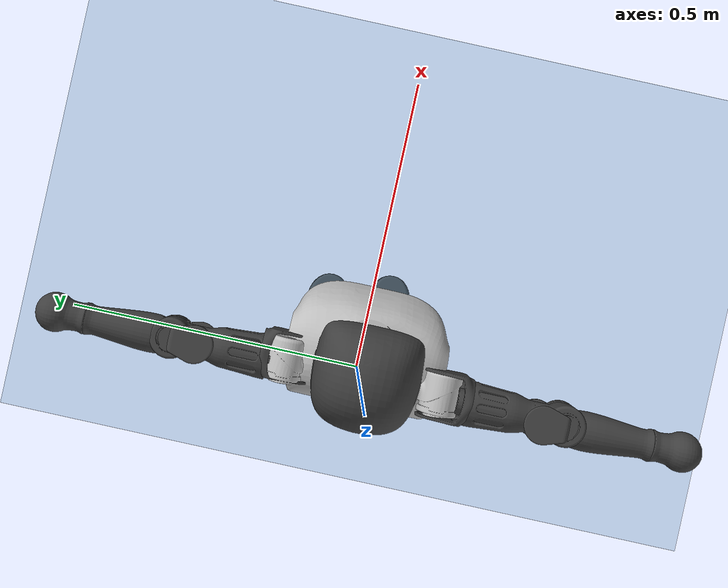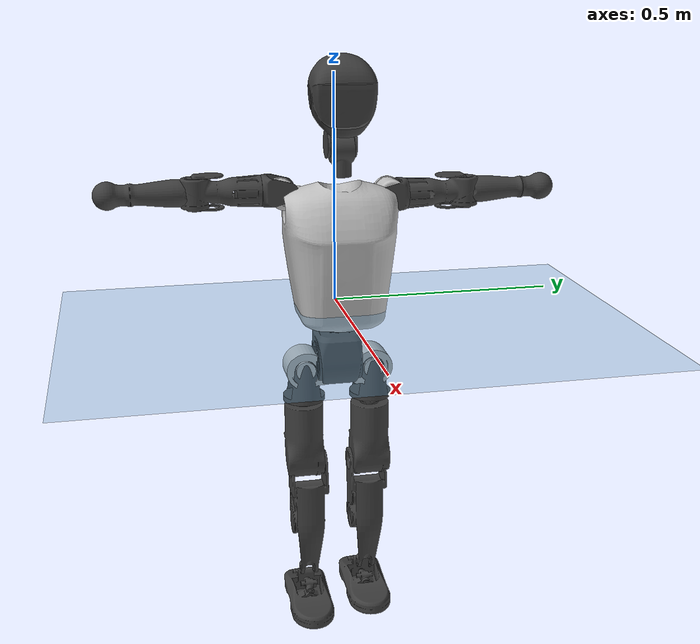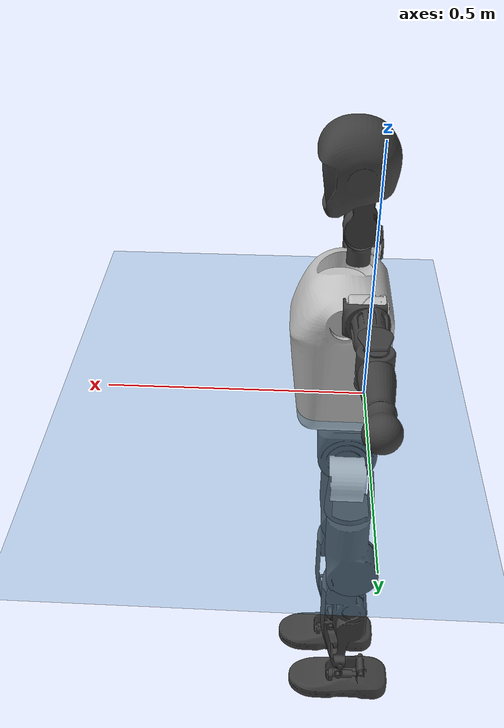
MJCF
<mujoco model="T1">
  <compiler angle="radian" assetdir="assets" balanceinertia="true" inertiafromgeom="false"/>

  <option timestep="0.005" density="1.2" viscosity="2e-05"/>

  <size nkey="1"/>

  <visual>
    <quality shadowsize="8192"/>
    <map shadowclip="0.5"/>
  </visual>

  <default>
    <default class="/">
      <joint armature="0.01" damping="0.01" frictionloss="0.1"/>
      <geom contype="0" conaffinity="0" group="1" solref="-1000 -80"/>
      <site size="0.01 0.005 0.005" group="5"/>
      <general forcelimited="true" biastype="affine" gainprm="25" biasprm="0 -25 -0.6"/>
      <default class="t1">
        <geom rgba="0.25 0.25 0.25 1"/>
        <default class="visual">
          <geom type="mesh" group="2"/>
        </default>
        <default class="collision">
          <geom group="3"/>
        </default>
        <default class="foot">
          <geom size="0.1115 0.05 0.015" type="box" condim="6" group="4" priority="1" solimp="0.015 1 0.015"/>
        </default>
        <default class="reward_collision_sphere">
          <geom group="5" rgba="1 0 0 1"/>
        </default>
      </default>
    </default>
  </default>

  <asset>
    <texture type="skybox" colorspace="auto" name="//unnamed_texture_0" builtin="gradient" rgb1="0.95 0.95 0.95" rgb2="0.95 0.95 0.95" width="100" height="600"/>
    <texture type="2d" colorspace="auto" name="texplane" builtin="checker" rgb1="0.345 0.575 0.748" rgb2="0.345 0.575 0.748" markrgb="1 1 1" width="512" height="512"/>
    <material name="MatPlane" class="/" texture="texplane" texuniform="true" texrepeat="2 2" specular="0.9"/>
    <mesh name="Trunk" class="/" file="Trunk.stl"/>
    <mesh name="H1" class="/" file="H1.stl"/>
    <mesh name="H2" class="/" file="H2.stl"/>
    <mesh name="AL1" class="/" file="AL1.stl"/>
    <mesh name="AL2" class="/" file="AL2.stl"/>
    <mesh name="AL3" class="/" file="AL3.stl"/>
    <mesh name="left_hand_link" class="/" file="left_hand_link.stl"/>
    <mesh name="AR1" class="/" file="AR1.stl"/>
    <mesh name="AR2" class="/" file="AR2.stl"/>
    <mesh name="AR3" class="/" file="AR3.stl"/>
    <mesh name="right_hand_link" class="/" file="right_hand_link.stl"/>
    <mesh name="Waist" class="/" file="Waist.stl"/>
    <mesh name="Hip_Pitch_Left" class="/" file="Hip_Pitch_Left.stl"/>
    <mesh name="Hip_Roll_Left" class="/" file="Hip_Roll_Left.stl"/>
    <mesh name="Hip_Yaw_Left" class="/" file="Hip_Yaw_Left.stl"/>
    <mesh name="Shank_Left" class="/" file="Shank_Left.stl"/>
    <mesh name="Ankle_Cross_Left" class="/" file="Ankle_Cross_Left.stl"/>
    <mesh name="left_foot_link" class="/" file="left_foot_link.stl"/>
    <mesh name="Hip_Pitch_Right" class="/" file="Hip_Pitch_Right.stl"/>
    <mesh name="Hip_Roll_Right" class="/" file="Hip_Roll_Right.stl"/>
    <mesh name="Hip_Yaw_Right" class="/" file="Hip_Yaw_Right.stl"/>
    <mesh name="Shank_Right" class="/" file="Shank_Right.stl"/>
    <mesh name="Ankle_Cross_Right" class="/" file="Ankle_Cross_Right.stl"/>
    <mesh name="right_foot_link" class="/" file="right_foot_link.stl"/>
  </asset>

  <worldbody>
    <geom name="floor" class="/" size="100 100 0.125" type="plane" group="0" material="MatPlane"/>
    <light name="toplight_shadow" class="/" pos="0 0 5" dir="0.0990148 0.0990148 -0.990148" type="directional" ambient="0.04 0.04 0.04" diffuse="0.55 0.55 0.55" specular="0.12 0.12 0.12"/>
    <light name="toplight_fill" class="/" pos="0 0 5" dir="0.0990148 0.0990148 -0.990148" type="directional" castshadow="false" ambient="0.04 0.04 0.04" diffuse="0.3 0.3 0.3" specular="0.08 0.08 0.08"/>
    <body name="trunk" childclass="t1" pos="-0.00428719 0.000475195 -0.00164403" quat="1 -3.93686e-05 0.00054736 0.000128301">
      <inertial pos="0.0227501 -0.00144365 0.121844" quat="0.999981 0.000374297 -0.00609357 0.000606221" mass="4.7945" diaginertia="0.00112991 0.017609 0.100213"/>
      <joint name="//unnamed_joint_0" type="free" armature="0" damping="0" frictionloss="0"/>
      <geom name="//unnamed_geom_1" class="visual" rgba="0.76 0.76 0.76 1" mesh="Trunk"/>
      <geom name="//unnamed_geom_2" class="collision" size="0.0575933 0.0767911 0.115187" pos="0.025387 0 0.136079" type="box"/>
      <geom name="//unnamed_geom_3" class="reward_collision_sphere" size="0.0883097" pos="0.025387 0 0.113399"/>
      <geom name="//unnamed_geom_4" class="reward_collision_sphere" size="0.0115187" pos="0.025387 0.0634633 0"/>
      <geom name="//unnamed_geom_5" class="reward_collision_sphere" size="0.0115187" pos="0.025387 -0.0634633 0"/>
      <geom name="//unnamed_geom_6" class="reward_collision_sphere" size="0.0115187" pos="0.025387 0.0798892 0.204118"/>
      <geom name="//unnamed_geom_7" class="reward_collision_sphere" size="0.0115187" pos="0.025387 -0.0798892 0.204118"/>
      <site name="imu" pos="0.0420144 0.00846458 -0.0257885" size="0.00767911"/>
      <camera name="track" pos="0 -1.49326 0" quat="0.707107 0.707107 0 0" mode="trackcom"/>
      <camera name="ego_camera" pos="0.0516202 0 0.476275" quat="-0.5 -0.5 0.5 0.5"/>
      <body name="H1" pos="0.0362421 0.00877218 0.28533" quat="1 -2.65172e-06 4.44043e-06 -7.88924e-06">
        <inertial pos="0.00314614 -0.00345264 0.0673985" quat="0.760676 -0.0532348 -0.0134552 0.646805" mass="0.181813" diaginertia="3.28446e-06 5.65968e-05 0.000270052"/>
        <joint name="AAHead_yaw" pos="0 0 0" axis="0.0065608 -0.039596 0.999194" range="-1.60578 1.5598" armature="0.00519009" damping="0.00150019" frictionloss="0.0651383"/>
        <geom name="//unnamed_geom_8" class="visual" mesh="H1"/>
        <body name="H2" pos="-0.00120479 -0.00194313 0.069758" quat="0.999995 -0.00176333 0.00116645 -0.00221355">
          <inertial pos="0.00230074 0.0101713 0.110416" quat="0.988303 0.105753 -0.0784982 -0.0768835" mass="0.263868" diaginertia="2.80748e-05 0.000455254 0.00312555"/>
          <joint name="Head_pitch" pos="0 0 0" axis="-4.92392e-05 -0.999997 0.00257601" stiffness="0.0140406" range="-1.22077 0.33659" armature="0.0061354" damping="0.00138096" frictionloss="0.0756376"/>
          <geom name="//unnamed_geom_9" class="visual" mesh="H2"/>
          <geom name="//unnamed_geom_10" class="collision" size="0.0614328" pos="0.00423116 0 0.124739"/>
          <geom name="//unnamed_geom_11" class="reward_collision_sphere" size="0.0691119" pos="0.00846232 0 0.113399"/>
        </body>
      </body>
      <body name="AL1" pos="0.0231399 0.0716324 0.244696" quat="1 0.000197019 0.000645541 0.000265442">
        <inertial pos="0.00866509 0.0250568 0.0056583" quat="0.504276 0.494471 -0.50533 0.495828" mass="0.223849" diaginertia="1.70406e-05 0.000277102 0.00051651"/>
        <joint name="Left_Shoulder_Pitch" pos="0 0 0" axis="0.0140158 0.999746 0.017654" range="-3.34613 1.21655" armature="0.00633026" damping="0" frictionloss="0.0945559"/>
        <geom name="//unnamed_geom_12" class="visual" rgba="0.76 0.76 0.76 1" mesh="AL1"/>
        <body name="AL2" pos="0.00327199 0.0282494 -0.00435393" quat="1 0.000510848 -0.00033971 3.37551e-05">
          <inertial pos="0.00223417 0.0278484 -0.00284924" quat="0.487896 0.510962 -0.488995 0.511624" mass="0.0698047" diaginertia="4.5306e-06 6.35126e-05 0.000311787"/>
          <joint name="Left_Shoulder_Roll" pos="0 0 0" axis="-0.999969 0.00671021 0.00414334" range="-1.65998 1.88525" armature="0.00741143" damping="0" frictionloss="0.0699419"/>
          <geom name="//unnamed_geom_13" class="visual" mesh="AL2"/>
          <body name="AL3" pos="-0.00837197 0.0439977 -0.00092736" quat="0.999998 0.00161506 -0.000394435 0.000947441">
            <inertial pos="-0.000445628 0.0642884 -0.00623466" quat="0.708001 0.705576 -0.00784013 -0.0289099" mass="0.454456" diaginertia="0.00016077 0.00295762 0.00116859"/>
            <joint name="Left_Elbow_Pitch" pos="0 0 0" axis="-0.00905875 -0.999952 -0.00372653" stiffness="0.00191433" range="-2.31066 2.1387" armature="0.0103271" damping="0.0140813" frictionloss="0.0699857"/>
            <geom name="//unnamed_geom_14" class="visual" mesh="AL3"/>
            <geom name="//unnamed_geom_15" class="collision" size="0.0230373 0.0575933" pos="0 0.0373314 0" quat="0.707105 0.707108 0 0" type="cylinder"/>
            <geom name="//unnamed_geom_16" class="reward_collision_sphere" size="0.0276448"/>
            <body name="left_hand_link" pos="-0.000891218 0.109502 0.00169136" quat="0.999996 0.00119196 0.00246739 0.000316345">
              <inertial pos="-0.0101643 0.0884372 -0.000874968" quat="0.70624 0.70796 -0.00172092 0.00384673" mass="0.152793" diaginertia="0.000105437 0.00183624 0.000432399"/>
              <joint name="Left_Elbow_Yaw" pos="0 0 0" axis="-0.0177841 -0.0125154 0.999764" range="-2.49669 0.0734889" armature="0.00533616" damping="0" frictionloss="0.0542049"/>
              <geom name="//unnamed_geom_17" class="visual" mesh="left_hand_link"/>
              <geom name="//unnamed_geom_18" class="collision" size="0.0230373 0.0671922" pos="0 0.0970616 0" quat="0.707105 0.707108 0 0" type="cylinder"/>
              <geom name="//unnamed_geom_19" class="reward_collision_sphere" size="0.0383955"/>
              <geom name="//unnamed_geom_20" class="reward_collision_sphere" size="0.0268769" pos="0 0.082129 0"/>
              <geom name="//unnamed_geom_21" class="reward_collision_sphere" size="0.0268769" pos="0 0.160525 0"/>
            </body>
          </body>
        </body>
      </body>
      <body name="AR1" pos="0.0223009 -0.0717743 0.25011" quat="0.999999 1.72113e-05 -0.000560987 0.00118299">
        <inertial pos="-0.00272492 -0.0341972 -0.000718986" quat="0.505438 0.49369 -0.503844 0.496934" mass="0.233458" diaginertia="1.86671e-05 0.000296211 0.000533803"/>
        <joint name="Right_Shoulder_Pitch" pos="0 0 0" axis="-0.000500096 -0.999993 0.00382141" range="-1.1827 3.30132" armature="0.00612504" damping="0.0469278" frictionloss="0.0896614"/>
        <geom name="//unnamed_geom_22" class="visual" rgba="0.76 0.76 0.76 1" mesh="AR1"/>
        <body name="AR2" pos="-0.00244357 -0.0369359 0.00787267" quat="1 6.51717e-05 0.000454518 -0.000199046">
          <inertial pos="0.00488514 -0.0340189 0.00899541" quat="0.506505 0.485163 -0.519537 0.488008" mass="0.069759" diaginertia="5.12266e-06 8.4093e-05 0.000306698"/>
          <joint name="Right_Shoulder_Roll" pos="0 0 0" axis="-0.999967 -0.0080529 0.00123776" stiffness="0.0348819" range="-1.92642 1.54309" armature="0.00701554" damping="0" frictionloss="0.0691508"/>
          <geom name="//unnamed_geom_23" class="visual" mesh="AR2"/>
          <body name="AR3" pos="-0.00302199 -0.0493376 -0.000557126" quat="0.999999 -0.00062357 -0.000276736 0.00081234">
            <inertial pos="0.0080369 -0.0646888 -0.000858427" quat="0.703828 0.710243 -0.0134349 -0.000147714" mass="0.4629" diaginertia="0.000173112 0.00299239 0.00104557"/>
            <joint name="Right_Elbow_Pitch" pos="0 0 0" axis="0.0126329 0.999911 0.0043537" stiffness="0.0295129" range="-2.27163 2.35137" armature="0.00727645" damping="0.000606221" frictionloss="0.108373"/>
            <geom name="//unnamed_geom_24" class="visual" mesh="AR3"/>
            <geom name="//unnamed_geom_25" class="collision" size="0.0230373 0.0575933" pos="0 -0.0373314 0" quat="0.707105 0.707108 0 0" type="cylinder"/>
            <geom name="//unnamed_geom_26" class="reward_collision_sphere" size="0.0276448"/>
            <body name="right_hand_link" pos="-0.00401501 -0.113197 0.000831598" quat="0.999999 0.000650561 -2.18985e-05 0.00095773">
              <inertial pos="0.00152761 -0.0828358 -0.00616061" quat="0.707118 0.707095 0.000776954 0.000683298" mass="0.142478" diaginertia="0.000109425 0.00202014 0.00040491"/>
              <joint name="Right_Elbow_Yaw" pos="0 0 0" axis="0.000105679 -0.00425178 0.999991" range="-0.0727605 2.45656" armature="0.00798114" damping="0.0104186" frictionloss="0.106177"/>
              <geom name="//unnamed_geom_27" class="visual" mesh="right_hand_link"/>
              <geom name="//unnamed_geom_28" class="collision" size="0.0230373 0.0671922" pos="0 -0.0970616 0" quat="0.707105 0.707108 0 0" type="cylinder"/>
              <geom name="//unnamed_geom_29" class="reward_collision_sphere" size="0.0383955"/>
              <geom name="//unnamed_geom_30" class="reward_collision_sphere" size="0.0268769" pos="0 -0.082129 0"/>
              <geom name="//unnamed_geom_31" class="reward_collision_sphere" size="0.0268769" pos="0 -0.160525 0"/>
            </body>
          </body>
        </body>
      </body>
      <body name="Waist" pos="0.0296624 -0.00225899 -0.130766" quat="1 0.000178054 -3.95079e-05 0.000194764">
        <inertial pos="0.00241523 -0.0022023 0.00661877" quat="0.984587 0.0101715 -0.174381 -0.00876713" mass="1.2553" diaginertia="6.47059e-05 0.00125585 0.00789229"/>
        <joint name="Waist" pos="0 0 0" axis="-0.028406 0.00698156 0.999572" range="-1.49806 1.63958" armature="0.00808922" damping="0.000727586" frictionloss="0.105884"/>
        <geom name="//unnamed_geom_32" class="visual" mesh="Waist"/>
        <body name="Hip_Pitch_Left" pos="0.00166013 0.0789862 0.000345317" quat="0.999999 -0.000953965 -0.000969327 -0.000102227">
          <inertial pos="-0.00051106 0.000533431 -0.0216271" quat="0.975259 0.219661 0.0218328 0.0119001" mass="0.451737" diaginertia="2.49273e-05 0.000305455 0.00206144"/>
          <joint name="Left_Hip_Pitch" pos="0 0 0" axis="-0.00609691 0.99998 0.00150936" range="-1.78803 1.56066" armature="0.00613091" damping="0" frictionloss="0.0791464"/>
          <geom name="//unnamed_geom_33" class="visual" rgba="0.76 0.76 0.76 1" mesh="Hip_Pitch_Left"/>
          <body name="Hip_Roll_Left" pos="-0.00787638 0.000616092 -0.0213713" quat="0.999994 -0.00201119 0.00236006 0.00171021">
            <inertial pos="-0.0038365 0.00212981 -0.0611682" quat="0.700501 -0.00287725 -0.00544428 0.713625" mass="0.208529" diaginertia="2.94201e-05 0.000390633 0.00109098"/>
            <joint name="Left_Hip_Roll" pos="0 0 0" axis="-0.999443 0.023298 0.0239039" range="-1.73772 0.156831" armature="0.0089558" damping="0.0213464" frictionloss="0.0823653"/>
            <geom name="//unnamed_geom_34" class="visual" mesh="Hip_Roll_Left"/>
            <geom name="//unnamed_geom_35" class="reward_collision_sphere" size="0.0422351"/>
            <body name="Hip_Yaw_Left" pos="-0.00310006 0.000588523 -0.0961169" quat="0.999993 0.00322039 0.00144509 -0.000858892">
              <inertial pos="0.00563901 -0.000631995 -0.100758" quat="0.695942 -0.0342381 -0.0326685 0.716537" mass="0.941771" diaginertia="0.000307679 0.00591449 0.004905"/>
              <joint name="Left_Hip_Yaw" pos="0 0 0" axis="0.000178717 -0.000222912 -1" stiffness="0.0376215" range="-1.18511 0.86245" armature="0.00762658" damping="0.01328" frictionloss="0.0526777"/>
              <geom name="//unnamed_geom_36" class="visual" mesh="Hip_Yaw_Left"/>
              <geom name="//unnamed_geom_37" class="collision" size="0.0383955 0.0614328" type="cylinder"/>
              <body name="Shank_Left" pos="-0.00467416 -0.00778126 -0.151045" quat="1 -9.43807e-06 -5.60288e-05 2.56857e-05">
                <inertial pos="0.00663403 0.000109441 -0.141453" quat="0.997986 -0.021686 0.0150053 0.0576964" mass="0.838145" diaginertia="0.000481998 0.00717715 0.00336545"/>
                <joint name="Left_Knee_Pitch" pos="0 0 0" axis="-0.00941017 0.999469 -0.031189" range="0.0295725 2.22922" armature="0.00954339" damping="0.0103944" frictionloss="0.0441833"/>
                <geom name="//unnamed_geom_38" class="visual" mesh="Shank_Left"/>
                <geom name="//unnamed_geom_39" class="collision" size="0.0383955 0.0575933" pos="0 0 -0.136079" type="cylinder"/>
                <geom name="//unnamed_geom_40" class="reward_collision_sphere" size="0.0499142"/>
                <body name="Ankle_Cross_Left" pos="0.000696038 -0.00180551 -0.3194" quat="1 -6.6546e-05 -0.000272737 -0.000634728">
                  <inertial pos="-0.000411072 0.00075131 -0.0109563" quat="0.43508 0.553268 0.554887 0.443509" mass="0.0319821" diaginertia="3.68074e-07 5.73447e-06 2.06914e-05"/>
                  <joint name="Left_Ankle_Pitch" pos="0 0 0" axis="0.0242509 0.99965 0.0105635" stiffness="0.00357826" range="-0.880082 0.439168" armature="0.00410765" damping="0.000602042" frictionloss="0.0846497"/>
                  <geom name="//unnamed_geom_41" class="visual" mesh="Ankle_Cross_Left"/>
                  <body name="left_foot_link" pos="-0.00932603 0.00105596 -0.0117697" quat="1 -7.61532e-05 -0.000260457 9.54834e-05">
                    <inertial pos="0.00826018 -0.00427635 -0.0103343" quat="-0.00594009 0.618427 0.00397926 0.78581" mass="0.313282" diaginertia="3.65248e-05 0.000568998 0.00454866"/>
                    <joint name="Left_Ankle_Roll" pos="0 0 0" axis="-0.999935 0.00158516 -0.0113086" stiffness="0.00147163" range="-0.510434 0.489596" armature="0.00733841" damping="0.0540743" frictionloss="0.0709851"/>
                    <geom name="//unnamed_geom_42" class="visual" mesh="left_foot_link"/>
                    <geom name="left_foot" class="foot" size="0.0959989 0.0490292 0.0128911" pos="0.00423116 0 -0.0170098"/>
                    <geom name="//unnamed_geom_44" class="reward_collision_sphere" size="0.0399313" pos="0.00423116 0 -0.0170098"/>
                    <geom name="//unnamed_geom_45" class="reward_collision_sphere" size="0.0230373" pos="0.040196 -0.0171724 -0.0170098"/>
                    <geom name="//unnamed_geom_46" class="reward_collision_sphere" size="0.0230373" pos="-0.0296181 -0.0171724 -0.0170098"/>
                    <site name="left_foot" class="foot" pos="0.00423116 0 -0.0170098" size="0.00767911"/>
                  </body>
                </body>
              </body>
            </body>
          </body>
        </body>
        <body name="Hip_Pitch_Right" pos="0.00362207 -0.0771446 0.0042438" quat="1 0.000582071 0.000254125 0.000221231">
          <inertial pos="-0.00121887 0.00598564 -0.0136042" quat="0.973273 -0.229149 0.0147537 -0.00356661" mass="0.47117" diaginertia="2.70926e-05 0.000305088 0.00227176"/>
          <joint name="Right_Hip_Pitch" pos="0 0 0" axis="0.00695329 -0.999951 -0.0069925" stiffness="0.00802891" range="-1.36691 1.62411" armature="0.00885732" damping="0" frictionloss="0.108159"/>
          <geom name="//unnamed_geom_47" class="visual" rgba="0.76 0.76 0.76 1" mesh="Hip_Pitch_Right"/>
          <body name="Hip_Roll_Right" pos="-0.00844375 0.00033524 -0.0231914" quat="0.999998 -0.00133997 0.00116898 -0.000836774">
            <inertial pos="0.000885469 0.00566553 -0.0668465" quat="0.706403 -0.00578538 -0.00523604 0.707767" mass="0.187532" diaginertia="2.53281e-05 0.000385484 0.000937221"/>
            <joint name="Right_Hip_Roll" pos="0 0 0" axis="-0.999166 0.021997 0.0344135" range="-0.185008 1.55596" armature="0.00938908" damping="0.000472784" frictionloss="0.0804325"/>
            <geom name="//unnamed_geom_48" class="visual" mesh="Hip_Roll_Right"/>
            <geom name="//unnamed_geom_49" class="reward_collision_sphere" size="0.0422351"/>
            <body name="Hip_Yaw_Right" pos="0.0049968 -0.00141583 -0.086705" quat="1 -0.000229849 -0.000110818 -0.000161169">
              <inertial pos="-0.00569901 -0.00778657 -0.0975513" quat="0.703943 -0.00045964 0.000534097 0.710256" mass="0.978503" diaginertia="0.000342745 0.00595515 0.00486577"/>
              <joint name="Right_Hip_Yaw" pos="0 0 0" axis="0.00654816 -0.00032936 -0.999979" stiffness="0.0049831" range="-0.999214 1.00337" armature="0.00704708" damping="0" frictionloss="0.0781078"/>
              <geom name="//unnamed_geom_50" class="visual" mesh="Hip_Yaw_Right"/>
              <geom name="//unnamed_geom_51" class="collision" size="0.0383955 0.0614328" type="cylinder"/>
              <body name="Shank_Right" pos="-0.00492644 0.00835416 -0.157912" quat="1 -0.000528906 -0.000235225 0.000290518">
                <inertial pos="0.0063321 -0.0100994 -0.136905" quat="0.999298 0.0190035 -0.0310961 -0.00866947" mass="0.758677" diaginertia="0.000523924 0.00876492 0.00385489"/>
                <joint name="Right_Knee_Pitch" pos="0 0 0" axis="-6.12862e-05 -0.999997 -0.00260067" range="-2.282 0.0248562" armature="0.00749655" damping="0.0102222" frictionloss="0.0847113"/>
                <geom name="//unnamed_geom_52" class="visual" mesh="Shank_Right"/>
                <geom name="//unnamed_geom_53" class="collision" size="0.0383955 0.0575933" pos="0 0 -0.136079" type="cylinder"/>
                <geom name="//unnamed_geom_54" class="reward_collision_sphere" size="0.0499142"/>
                <body name="Ankle_Cross_Right" pos="0.00460904 -0.000853681 -0.318235" quat="0.999999 -0.000821226 0.00052227 0.000411722">
                  <inertial pos="-0.00151593 0.00669111 -0.00913851" quat="0.42239 0.543135 0.584865 0.429562" mass="0.0321287" diaginertia="3.85199e-07 7.25265e-06 2.26341e-05"/>
                  <joint name="Right_Ankle_Pitch" pos="0 0 0" axis="-0.0194169 -0.999672 0.0167263" range="-0.400453 0.867524" armature="0.00563646" damping="0.0435979" frictionloss="0.069443"/>
                  <geom name="//unnamed_geom_55" class="visual" mesh="Ankle_Cross_Right"/>
                  <body name="right_foot_link" pos="0.00237752 -0.00189487 -0.0211416" quat="1 4.51262e-06 7.0715e-06 3.0881e-06">
                    <inertial pos="-0.000424547 -0.00115694 -0.0176329" quat="0.0143891 0.628835 0.00431574 0.777394" mass="0.305537" diaginertia="3.32587e-05 0.000546283 0.00397649"/>
                    <joint name="Right_Ankle_Roll" pos="0 0 0" axis="-0.999945 0.0058478 0.00866534" range="-0.477377 0.519029" armature="0.00758245" damping="0" frictionloss="0.0935594"/>
                    <geom name="//unnamed_geom_56" class="visual" mesh="right_foot_link"/>
                    <geom name="right_foot" class="foot" size="0.0936009 0.0414876 0.0111" pos="0.00423116 0 -0.0170098"/>
                    <geom name="//unnamed_geom_58" class="reward_collision_sphere" size="0.0307164"/>
                    <geom name="//unnamed_geom_59" class="reward_collision_sphere" size="0.0230373" pos="0.00423116 0 -0.0170098"/>
                    <geom name="//unnamed_geom_60" class="reward_collision_sphere" size="0.0230373" pos="0.040196 0.0171724 -0.0170098"/>
                    <geom name="//unnamed_geom_61" class="reward_collision_sphere" size="0.0230373" pos="-0.0296181 0.0171724 -0.0170098"/>
                    <site name="right_foot" class="foot" pos="0.00423116 0 -0.0170098" size="0.00767911"/>
                  </body>
                </body>
              </body>
            </body>
          </body>
        </body>
      </body>
    </body>
  </worldbody>

  <contact>
    <pair class="/" geom1="floor" geom2="left_foot" name="//unnamed_contact_0"/>
    <pair class="/" geom1="floor" geom2="right_foot" name="//unnamed_contact_1"/>
  </contact>

  <actuator>
    <general name="AAHead_yaw" class="/" joint="AAHead_yaw" forcerange="-4.43051 4.43051" gainprm="18.6285" biasprm="0 -18.6285 -0.530315"/>
    <general name="Head_pitch" class="/" joint="Head_pitch" forcerange="-5.5655 5.5655" gainprm="18.6285" biasprm="0 -18.6285 -0.530315"/>
    <general name="Left_Shoulder_Pitch" class="/" joint="Left_Shoulder_Pitch" forcerange="-14.8975 14.8975" gainprm="18.6285" biasprm="0 -18.6285 -0.530315"/>
    <general name="Left_Shoulder_Roll" class="/" joint="Left_Shoulder_Roll" forcerange="-12.703 12.703" gainprm="18.6285" biasprm="0 -18.6285 -0.530315"/>
    <general name="Left_Elbow_Pitch" class="/" joint="Left_Elbow_Pitch" forcerange="-11.1369 11.1369" gainprm="18.6285" biasprm="0 -18.6285 -0.530315"/>
    <general name="Left_Elbow_Yaw" class="/" joint="Left_Elbow_Yaw" forcerange="-12.2181 12.2181" gainprm="18.6285" biasprm="0 -18.6285 -0.530315"/>
    <general name="Right_Shoulder_Pitch" class="/" joint="Right_Shoulder_Pitch" forcerange="-14.8299 14.8299" gainprm="18.6285" biasprm="0 -18.6285 -0.530315"/>
    <general name="Right_Shoulder_Roll" class="/" joint="Right_Shoulder_Roll" forcerange="-13.6326 13.6326" gainprm="18.6285" biasprm="0 -18.6285 -0.530315"/>
    <general name="Right_Elbow_Pitch" class="/" joint="Right_Elbow_Pitch" forcerange="-13.6678 13.6678" gainprm="18.6285" biasprm="0 -18.6285 -0.530315"/>
    <general name="Right_Elbow_Yaw" class="/" joint="Right_Elbow_Yaw" forcerange="-13.97 13.97" gainprm="18.6285" biasprm="0 -18.6285 -0.530315"/>
    <general name="Waist" class="/" joint="Waist" forcerange="-22.32 22.32" gainprm="18.6285" biasprm="0 -18.6285 -0.530315"/>
    <general name="Left_Hip_Pitch" class="/" joint="Left_Hip_Pitch" forcerange="-34.046 34.046" gainprm="18.6285" biasprm="0 -18.6285 -0.530315"/>
    <general name="Left_Hip_Roll" class="/" joint="Left_Hip_Roll" forcerange="-24.0149 24.0149" gainprm="18.6285" biasprm="0 -18.6285 -0.530315"/>
    <general name="Left_Hip_Yaw" class="/" joint="Left_Hip_Yaw" forcerange="-27.6721 27.6721" gainprm="18.6285" biasprm="0 -18.6285 -0.530315"/>
    <general name="Left_Knee_Pitch" class="/" joint="Left_Knee_Pitch" forcerange="-41.8065 41.8065" gainprm="18.6285" biasprm="0 -18.6285 -0.530315"/>
    <general name="Left_Ankle_Pitch" class="/" joint="Left_Ankle_Pitch" forcerange="-16.9211 16.9211" gainprm="18.6285" biasprm="0 -18.6285 -0.530315"/>
    <general name="Left_Ankle_Roll" class="/" joint="Left_Ankle_Roll" forcerange="-10.6455 10.6455" gainprm="18.6285" biasprm="0 -18.6285 -0.530315"/>
    <general name="Right_Hip_Pitch" class="/" joint="Right_Hip_Pitch" forcerange="-32.1541 32.1541" gainprm="18.6285" biasprm="0 -18.6285 -0.530315"/>
    <general name="Right_Hip_Roll" class="/" joint="Right_Hip_Roll" forcerange="-21.9129 21.9129" gainprm="18.6285" biasprm="0 -18.6285 -0.530315"/>
    <general name="Right_Hip_Yaw" class="/" joint="Right_Hip_Yaw" forcerange="-23.6501 23.6501" gainprm="18.6285" biasprm="0 -18.6285 -0.530315"/>
    <general name="Right_Knee_Pitch" class="/" joint="Right_Knee_Pitch" forcerange="-55.7611 55.7611" gainprm="18.6285" biasprm="0 -18.6285 -0.530315"/>
    <general name="Right_Ankle_Pitch" class="/" joint="Right_Ankle_Pitch" forcerange="-19.471 19.471" gainprm="18.6285" biasprm="0 -18.6285 -0.530315"/>
    <general name="Right_Ankle_Roll" class="/" joint="Right_Ankle_Roll" forcerange="-11.2728 11.2728" gainprm="18.6285" biasprm="0 -18.6285 -0.530315"/>
  </actuator>

  <sensor>
    <gyro site="imu" name="imu_angular_velocity"/>
    <velocimeter site="imu" name="imu_linear_velocity"/>
    <framelinvel objtype="site" objname="left_foot" name="left_foot_global_linear_velocity"/>
    <framelinvel objtype="site" objname="right_foot" name="right_foot_global_linear_velocity"/>
  </sensor>

  <keyframe>
    <key name="home" qpos="0 0 0.6385 1 0 0 0 0 0 0 1.4 0 -0.4 0 -1.4 0 0.4 0 -0.4 0 0 0.8 -0.4 0 0.4 0 0 -0.8 0.4 0"/>
  </keyframe>
</mujoco>
